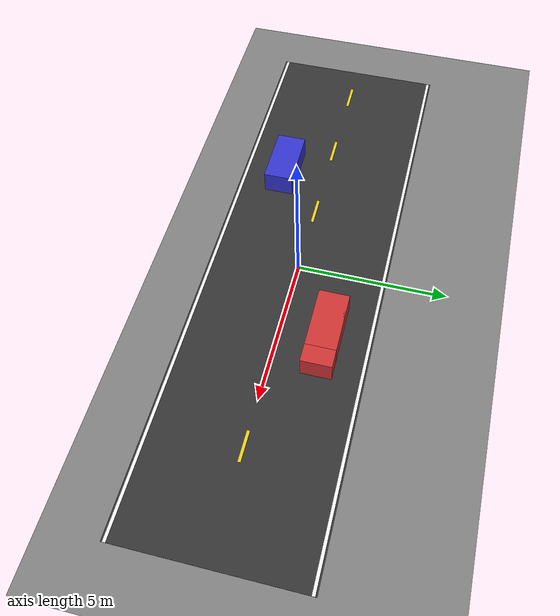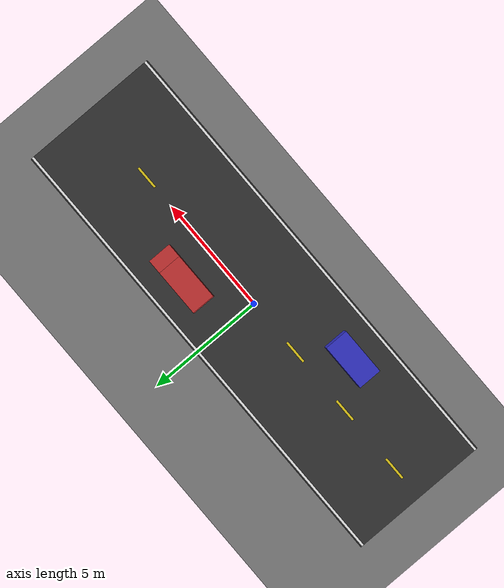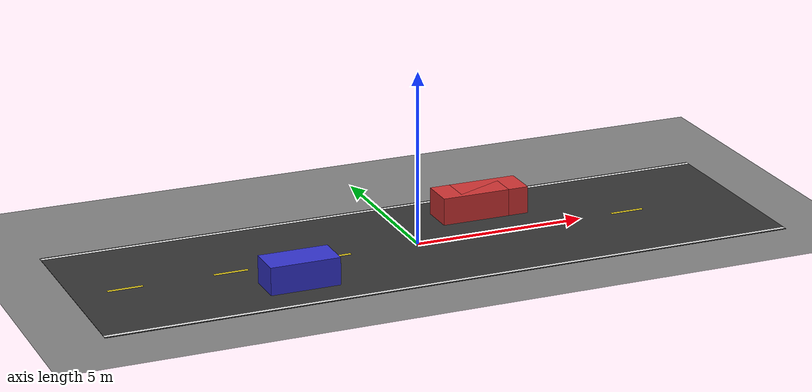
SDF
<?xml version="1.0" ?>
<sdf version="1.8">
  <world name="road_scene_generated">

    <!-- Physics -->
    <physics name="1ms" type="ignored">
      <max_step_size>0.001</max_step_size>
      <real_time_factor>1.0</real_time_factor>
    </physics>

    <!-- Plugins -->
    <plugin filename="gz-sim-physics-system" name="gz::sim::systems::Physics"/>
    <plugin filename="gz-sim-user-commands-system" name="gz::sim::systems::UserCommands"/>
    <plugin filename="gz-sim-scene-broadcaster-system" name="gz::sim::systems::SceneBroadcaster"/>
    <plugin filename="gz-sim-sensors-system" name="gz::sim::systems::Sensors">
      <render_engine>ogre2</render_engine>
    </plugin>
    <plugin filename="gz-sim-imu-system" name="gz::sim::systems::Imu"/>
    <plugin filename="gz-sim-contact-system" name="gz::sim::systems::Contact"/>

    <!-- Lighting -->
    <light type="directional" name="sun">
      <cast_shadows>true</cast_shadows>
      <pose>0 0 10 0 0 0</pose>
      <diffuse>0.8 0.8 0.8 1</diffuse>
      <specular>0.2 0.2 0.2 1</specular>
      <direction>-0.5 0.1 -0.9</direction>
    </light>

    <!-- Ground Plane -->
    <model name="ground_plane">
      <static>true</static>
      <link name="link">
        <collision name="collision">
          <geometry>
            <plane>
              <normal>0 0 1</normal>
              <size>100 100</size>
            </plane>
          </geometry>
        </collision>
        <visual name="visual">
          <geometry>
            <plane>
              <normal>0 0 1</normal>
              <size>100 100</size>
            </plane>
          </geometry>
          <material>
            <ambient>0.5 0.5 0.5 1.0</ambient>
            <diffuse>0.5 0.5 0.5 1.0</diffuse>
          </material>
        </visual>
      </link>
    </model>

    <!-- Road: road_1 -->
    <model name="road_1">
      <static>true</static>
      <pose>0.0 0.0 0.001 0 0 0.0</pose>
      <link name="link">
        <visual name="road_surface">
          <geometry><box><size>20.0 6.0 0.01</size></box></geometry>
          <material>
            <ambient>0.2 0.2 0.2 1.0</ambient>
            <diffuse>0.2 0.2 0.2 1.0</diffuse>
          </material>
        </visual>
      </link>
    </model>

    <model name="road_1_center_line_0">
      <static>true</static>
      <pose>-8.5 0.0 0.002 0 0 0.0</pose>
      <link name="link">
        <visual name="visual">
          <geometry><box><size>1.0 0.1 0.01</size></box></geometry>
          <material>
            <ambient>0.9 0.8 0.1 1.0</ambient>
            <diffuse>0.9 0.8 0.1 1.0</diffuse>
          </material>
        </visual>
      </link>
    </model>

    <model name="road_1_center_line_1">
      <static>true</static>
      <pose>-5.5 0.0 0.002 0 0 0.0</pose>
      <link name="link">
        <visual name="visual">
          <geometry><box><size>1.0 0.1 0.01</size></box></geometry>
          <material>
            <ambient>0.9 0.8 0.1 1.0</ambient>
            <diffuse>0.9 0.8 0.1 1.0</diffuse>
          </material>
        </visual>
      </link>
    </model>

    <model name="road_1_center_line_2">
      <static>true</static>
      <pose>-2.5 0.0 0.002 0 0 0.0</pose>
      <link name="link">
        <visual name="visual">
          <geometry><box><size>1.0 0.1 0.01</size></box></geometry>
          <material>
            <ambient>0.9 0.8 0.1 1.0</ambient>
            <diffuse>0.9 0.8 0.1 1.0</diffuse>
          </material>
        </visual>
      </link>
    </model>

    <model name="road_1_center_line_3">
      <static>true</static>
      <pose>0.5 0.0 0.002 0 0 0.0</pose>
      <link name="link">
        <visual name="visual">
          <geometry><box><size>1.0 0.1 0.01</size></box></geometry>
          <material>
            <ambient>0.9 0.8 0.1 1.0</ambient>
            <diffuse>0.9 0.8 0.1 1.0</diffuse>
          </material>
        </visual>
      </link>
    </model>

    <model name="road_1_center_line_4">
      <static>true</static>
      <pose>3.5 0.0 0.002 0 0 0.0</pose>
      <link name="link">
        <visual name="visual">
          <geometry><box><size>1.0 0.1 0.01</size></box></geometry>
          <material>
            <ambient>0.9 0.8 0.1 1.0</ambient>
            <diffuse>0.9 0.8 0.1 1.0</diffuse>
          </material>
        </visual>
      </link>
    </model>

    <model name="road_1_center_line_5">
      <static>true</static>
      <pose>6.5 0.0 0.002 0 0 0.0</pose>
      <link name="link">
        <visual name="visual">
          <geometry><box><size>1.0 0.1 0.01</size></box></geometry>
          <material>
            <ambient>0.9 0.8 0.1 1.0</ambient>
            <diffuse>0.9 0.8 0.1 1.0</diffuse>
          </material>
        </visual>
      </link>
    </model>

    <model name="road_1_edge_left">
      <static>true</static>
      <pose>1.7757378587636622e-16 2.9 0.002 0 0 0.0</pose>
      <link name="link">
        <visual name="visual">
          <geometry><box><size>20.0 0.1 0.01</size></box></geometry>
          <material>
            <ambient>0.95 0.95 0.95 1.0</ambient>
            <diffuse>0.95 0.95 0.95 1.0</diffuse>
          </material>
        </visual>
      </link>
    </model>

    <model name="road_1_edge_right">
      <static>true</static>
      <pose>-1.7757378587636622e-16 -2.9 0.002 0 0 0.0</pose>
      <link name="link">
        <visual name="visual">
          <geometry><box><size>20.0 0.1 0.01</size></box></geometry>
          <material>
            <ambient>0.95 0.95 0.95 1.0</ambient>
            <diffuse>0.95 0.95 0.95 1.0</diffuse>
          </material>
        </visual>
      </link>
    </model>

    <!-- Moving Obstacle: car_2 -->
    <model name="car_2">
      <static>false</static>
      <pose>2.23082877532614 1.5 0.4 0 0 0</pose>
      <link name="link">
        <collision name="collision">
          <geometry><box><size>2.0 1.0 0.8</size></box></geometry>
        </collision>
        <visual name="visual">
          <geometry><box><size>2.0 1.0 0.8</size></box></geometry>
          <material>
            <ambient>0.8 0.2 0.2 1.0</ambient>
            <diffuse>0.8 0.2 0.2 1.0</diffuse>
          </material>
        </visual>
        <inertial>
          <mass>10.0</mass>
          <inertia>
            <ixx>0.1</ixx><iyy>0.1</iyy><izz>0.1</izz>
          </inertia>
        </inertial>
      </link>

      <!-- Trajectory Plugin -->
      <plugin filename="gz-sim-trajectory-follower-system" name="gz::sim::systems::TrajectoryFollower">
        <link_name>link</link_name>
        <loop>true</loop>
        <force>100</force>
          <waypoint>
            <time>0.00</time>
            <pose>2.23082877532614 1.5 0.4 0 0 0</pose>
          </waypoint>
          <waypoint>
            <time>2.59</time>
            <pose>9.0 1.5 0.4 0 0 0</pose>
          </waypoint>
          <waypoint>
            <time>9.48</time>
            <pose>-9.0 1.5 0.4 0 0 0</pose>
          </waypoint>
          <waypoint>
            <time>13.78</time>
            <pose>2.23082877532614 1.5 0.4 0 0 0</pose>
          </waypoint>
      </plugin>
    </model>

    <!-- Moving Obstacle: car_3 -->
    <model name="car_3">
      <static>false</static>
      <pose>-4.08173033914438 -1.5 0.4 0 0 0</pose>
      <link name="link">
        <collision name="collision">
          <geometry><box><size>2.0 1.0 0.8</size></box></geometry>
        </collision>
        <visual name="visual">
          <geometry><box><size>2.0 1.0 0.8</size></box></geometry>
          <material>
            <ambient>0.2 0.2 0.8 1.0</ambient>
            <diffuse>0.2 0.2 0.8 1.0</diffuse>
          </material>
        </visual>
        <inertial>
          <mass>10.0</mass>
          <inertia>
            <ixx>0.1</ixx><iyy>0.1</iyy><izz>0.1</izz>
          </inertia>
        </inertial>
      </link>

      <!-- Trajectory Plugin -->
      <plugin filename="gz-sim-trajectory-follower-system" name="gz::sim::systems::TrajectoryFollower">
        <link_name>link</link_name>
        <loop>true</loop>
        <force>100</force>
          <waypoint>
            <time>0.00</time>
            <pose>-4.08173033914438 -1.5 0.4 0 0 0</pose>
          </waypoint>
          <waypoint>
            <time>1.89</time>
            <pose>-9.0 -1.5 0.4 0 0 0</pose>
          </waypoint>
          <waypoint>
            <time>8.80</time>
            <pose>9.0 -1.5 0.4 0 0 0</pose>
          </waypoint>
          <waypoint>
            <time>13.82</time>
            <pose>-4.08173033914438 -1.5 0.4 0 0 0</pose>
          </waypoint>
      </plugin>
    </model>

    <!-- Moving Obstacle: car_4 -->
    <model name="car_4">
      <static>false</static>
      <pose>2.827191798766581 1.5 0.4 0 0 0</pose>
      <link name="link">
        <collision name="collision">
          <geometry><box><size>2.0 1.0 0.8</size></box></geometry>
        </collision>
        <visual name="visual">
          <geometry><box><size>2.0 1.0 0.8</size></box></geometry>
          <material>
            <ambient>0.8 0.2 0.2 1.0</ambient>
            <diffuse>0.8 0.2 0.2 1.0</diffuse>
          </material>
        </visual>
        <inertial>
          <mass>10.0</mass>
          <inertia>
            <ixx>0.1</ixx><iyy>0.1</iyy><izz>0.1</izz>
          </inertia>
        </inertial>
      </link>

      <!-- Trajectory Plugin -->
      <plugin filename="gz-sim-trajectory-follower-system" name="gz::sim::systems::TrajectoryFollower">
        <link_name>link</link_name>
        <loop>true</loop>
        <force>100</force>
          <waypoint>
            <time>0.00</time>
            <pose>2.827191798766581 1.5 0.4 0 0 0</pose>
          </waypoint>
          <waypoint>
            <time>2.59</time>
            <pose>9.0 1.5 0.4 0 0 0</pose>
          </waypoint>
          <waypoint>
            <time>10.13</time>
            <pose>-9.0 1.5 0.4 0 0 0</pose>
          </waypoint>
          <waypoint>
            <time>15.09</time>
            <pose>2.827191798766581 1.5 0.4 0 0 0</pose>
          </waypoint>
      </plugin>
    </model>

  </world>
</sdf>
